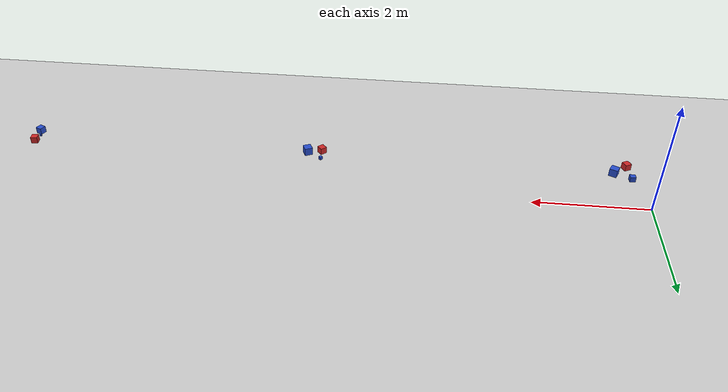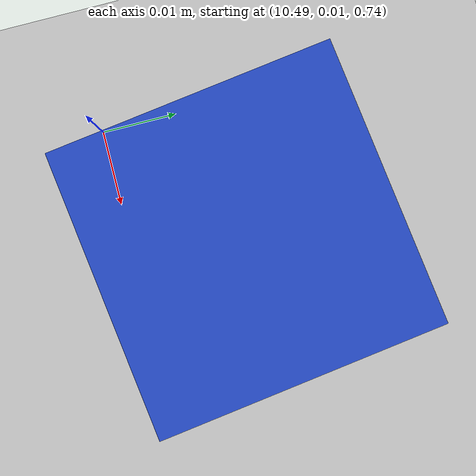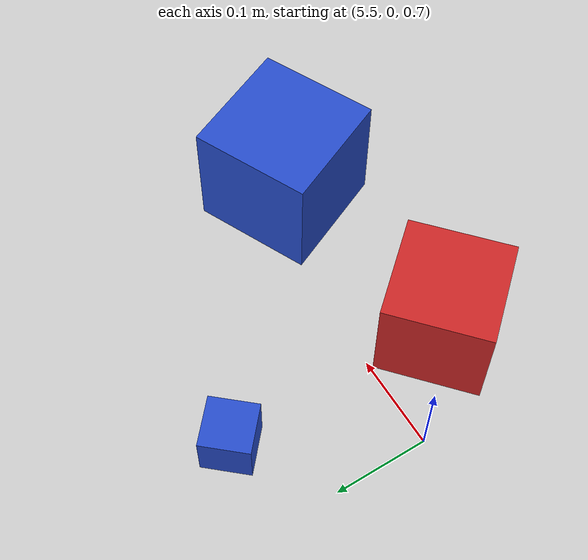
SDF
<sdf version="1.4">
 <world name="simple">
  <include><uri>model://ground_plane</uri></include>
  <include><uri>model://sun</uri></include>
  <include>
   <uri>model://blue_cube13cm</uri>
   <name>block2</name>
   <pose>0.775122606028 0.00917768376894 0.75 0 0 -0.462422397712</pose>
  </include>
  <include>
   <uri>model://red_cube11cm</uri>
   <name>block3</name>
   <pose>0.552118859762 -0.169786217913 0.75 0 0 -1.09881522158</pose>
  </include>
  <include>
   <uri>model://blue_cube9cm</uri>
   <name>block4</name>
   <pose>0.512461167611 0.171150570285 0.75 0 0 -1.51239862201</pose>
  </include>
  <include>
   <uri>model://blue_cube13cm</uri>
   <name>block32</name>
   <pose>5.82835834191 -0.0436869555082 0.75 0 0 2.00043534768</pose>
  </include>
  <include>
   <uri>model://red_cube11cm</uri>
   <name>block33</name>
   <pose>5.590232219462 -0.0823556166928 0.75 0 0 0.720586245288</pose>
  </include>
  <include>
   <uri>model://blue_cube5cm</uri>
   <name>block34</name>
   <pose>5.583656921256 0.166089543942 0.75 0 0 0.850874702647</pose>
  </include>
  <include>
   <uri>model://red_cube11cm</uri>
   <name>block41</name>
   <pose>10.560941877563 0.153616736138 0.75 0 0 -1.47891037588</pose>
  </include>
  <include>
   <uri>model://blue_cube3cm</uri>
   <name>block42</name>
   <pose>10.509553262591 0.0246769795919 0.75 0 0 -3.00862001452</pose>
  </include>
  <include>
   <uri>model://blue_cube11cm</uri>
   <name>block44</name>
   <pose>10.575518395117 -0.141505761186 0.75 0 0 1.14851744799</pose>
  </include>
 </world>
</sdf>

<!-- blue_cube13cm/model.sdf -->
<sdf version='1.4'>
  <model name="blue_cube13cm">
      <static>0</static>
      <link name='link'>
        <inertial>
          <mass>0.1</mass>
          <inertia>
            <ixx>0.001</ixx>
            <ixy>0.000000</ixy>
            <ixz>0.000000</ixz>
            <iyy>0.001</iyy>
            <iyz>0.000000</iyz>
            <izz>0.001</izz>
          </inertia>
        </inertial>
        <collision name='collision'>
          <geometry>
            <box>
              <size>0.130 0.130 0.130</size>
            </box>
          </geometry>
          <surface>
            <friction>
              <ode>
                <mu>15.0</mu>
                <mu2>15.0</mu2>
              </ode>
            </friction>
            <contact>
              <ode>
                <kp>1000000.0</kp>
                <kd>100.0</kd>
                <max_vel>1.0</max_vel>
                <min_depth>0.002</min_depth>
              </ode>
            </contact>
          </surface>
        </collision>
        <visual name='visual'>
          <geometry>
            <box>
              <size>0.130 0.130 0.130</size>
            </box>
          </geometry>
          <material>
            <script>
              <uri>file://media/materials/scripts/gazebo.material</uri>
              <name>Gazebo/Blue</name>
            </script>
          </material>
        </visual>
        <velocity_decay>
          <linear>0.000000</linear>
          <angular>0.000000</angular>
        </velocity_decay>
        <self_collide>0</self_collide>
        <kinematic>0</kinematic>
        <gravity>1</gravity>
      </link>
  </model>
</sdf>

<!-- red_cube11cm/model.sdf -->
<sdf version='1.4'>
  <model name="red_cube11cm">
      <static>0</static>
      <link name='link'>
        <inertial>
          <mass>0.1</mass>
          <inertia>
            <ixx>0.001</ixx>
            <ixy>0.000000</ixy>
            <ixz>0.000000</ixz>
            <iyy>0.001</iyy>
            <iyz>0.000000</iyz>
            <izz>0.001</izz>
          </inertia>
        </inertial>
        <collision name='collision'>
          <geometry>
            <box>
              <size>0.110 0.110 0.110</size>
            </box>
          </geometry>
          <surface>
            <friction>
              <ode>
                <mu>15.0</mu>
                <mu2>15.0</mu2>
              </ode>
            </friction>
            <contact>
              <ode>
                <kp>1000000.0</kp>
                <kd>100.0</kd>
                <max_vel>1.0</max_vel>
                <min_depth>0.002</min_depth>
              </ode>
            </contact>
          </surface>
        </collision>
        <visual name='visual'>
          <geometry>
            <box>
              <size>0.110 0.110 0.110</size>
            </box>
          </geometry>
          <material>
            <script>
              <uri>file://media/materials/scripts/gazebo.material</uri>
              <name>Gazebo/Red</name>
            </script>
          </material>
        </visual>
        <velocity_decay>
          <linear>0.000000</linear>
          <angular>0.000000</angular>
        </velocity_decay>
        <self_collide>0</self_collide>
        <kinematic>0</kinematic>
        <gravity>1</gravity>
      </link>
  </model>
</sdf>

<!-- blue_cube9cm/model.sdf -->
<sdf version='1.4'>
  <model name="blue_cube9cm">
      <static>0</static>
      <link name='link'>
        <inertial>
          <mass>0.1</mass>
          <inertia>
            <ixx>0.001</ixx>
            <ixy>0.000000</ixy>
            <ixz>0.000000</ixz>
            <iyy>0.001</iyy>
            <iyz>0.000000</iyz>
            <izz>0.001</izz>
          </inertia>
        </inertial>
        <collision name='collision'>
          <geometry>
            <box>
              <size>0.090 0.090 0.090</size>
            </box>
          </geometry>
          <surface>
            <friction>
              <ode>
                <mu>15.0</mu>
                <mu2>15.0</mu2>
              </ode>
            </friction>
            <contact>
              <ode>
                <kp>1000000.0</kp>
                <kd>100.0</kd>
                <max_vel>1.0</max_vel>
                <min_depth>0.002</min_depth>
              </ode>
            </contact>
          </surface>
        </collision>
        <visual name='visual'>
          <geometry>
            <box>
              <size>0.090 0.090 0.090</size>
            </box>
          </geometry>
          <material>
            <script>
              <uri>file://media/materials/scripts/gazebo.material</uri>
              <name>Gazebo/Blue</name>
            </script>
          </material>
        </visual>
        <velocity_decay>
          <linear>0.000000</linear>
          <angular>0.000000</angular>
        </velocity_decay>
        <self_collide>0</self_collide>
        <kinematic>0</kinematic>
        <gravity>1</gravity>
      </link>
  </model>
</sdf>

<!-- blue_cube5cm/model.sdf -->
<sdf version='1.4'>
  <model name="blue_cube5cm">
      <static>0</static>
      <link name='link'>
        <inertial>
          <mass>0.1</mass>
          <inertia>
            <ixx>0.001</ixx>
            <ixy>0.000000</ixy>
            <ixz>0.000000</ixz>
            <iyy>0.001</iyy>
            <iyz>0.000000</iyz>
            <izz>0.001</izz>
          </inertia>
        </inertial>
        <collision name='collision'>
          <geometry>
            <box>
              <size>0.050 0.050 0.050</size>
            </box>
          </geometry>
          <surface>
            <friction>
              <ode>
                <mu>15.0</mu>
                <mu2>15.0</mu2>
              </ode>
            </friction>
            <contact>
              <ode>
                <kp>1000000.0</kp>
                <kd>100.0</kd>
                <max_vel>1.0</max_vel>
                <min_depth>0.002</min_depth>
              </ode>
            </contact>
          </surface>
        </collision>
        <visual name='visual'>
          <geometry>
            <box>
              <size>0.050 0.050 0.050</size>
            </box>
          </geometry>
          <material>
            <script>
              <uri>file://media/materials/scripts/gazebo.material</uri>
              <name>Gazebo/Blue</name>
            </script>
          </material>
        </visual>
        <velocity_decay>
          <linear>0.000000</linear>
          <angular>0.000000</angular>
        </velocity_decay>
        <self_collide>0</self_collide>
        <kinematic>0</kinematic>
        <gravity>1</gravity>
      </link>
  </model>
</sdf>

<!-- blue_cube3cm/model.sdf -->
<sdf version='1.4'>
  <model name="blue_cube3cm">
      <static>0</static>
      <link name='link'>
        <inertial>
          <mass>0.1</mass>
          <inertia>
            <ixx>0.001</ixx>
            <ixy>0.000000</ixy>
            <ixz>0.000000</ixz>
            <iyy>0.001</iyy>
            <iyz>0.000000</iyz>
            <izz>0.001</izz>
          </inertia>
        </inertial>
        <collision name='collision'>
          <geometry>
            <box>
              <size>0.030 0.030 0.030</size>
            </box>
          </geometry>
          <surface>
            <friction>
              <ode>
                <mu>15.0</mu>
                <mu2>15.0</mu2>
              </ode>
            </friction>
            <contact>
              <ode>
                <kp>1000000.0</kp>
                <kd>100.0</kd>
                <max_vel>1.0</max_vel>
                <min_depth>0.002</min_depth>
              </ode>
            </contact>
          </surface>
        </collision>
        <visual name='visual'>
          <geometry>
            <box>
              <size>0.030 0.030 0.030</size>
            </box>
          </geometry>
          <material>
            <script>
              <uri>file://media/materials/scripts/gazebo.material</uri>
              <name>Gazebo/Blue</name>
            </script>
          </material>
        </visual>
        <velocity_decay>
          <linear>0.000000</linear>
          <angular>0.000000</angular>
        </velocity_decay>
        <self_collide>0</self_collide>
        <kinematic>0</kinematic>
        <gravity>1</gravity>
      </link>
  </model>
</sdf>

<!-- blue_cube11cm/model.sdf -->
<sdf version='1.4'>
  <model name="blue_cube11cm_11cm">
      <static>0</static>
      <link name='link'>
        <inertial>
          <mass>0.1</mass>
          <inertia>
            <ixx>0.001</ixx>
            <ixy>0.000000</ixy>
            <ixz>0.000000</ixz>
            <iyy>0.001</iyy>
            <iyz>0.000000</iyz>
            <izz>0.001</izz>
          </inertia>
        </inertial>
        <collision name='collision'>
          <geometry>
            <box>
              <size>0.110 0.110 0.110</size>
            </box>
          </geometry>
          <surface>
            <friction>
              <ode>
                <mu>15.0</mu>
                <mu2>15.0</mu2>
              </ode>
            </friction>
            <contact>
              <ode>
                <kp>1000000.0</kp>
                <kd>100.0</kd>
                <max_vel>1.0</max_vel>
                <min_depth>0.002</min_depth>
              </ode>
            </contact>
          </surface>
        </collision>
        <visual name='visual'>
          <geometry>
            <box>
              <size>0.110 0.110 0.110</size>
            </box>
          </geometry>
          <material>
            <script>
              <uri>file://media/materials/scripts/gazebo.material</uri>
              <name>Gazebo/Blue</name>
            </script>
          </material>
        </visual>
        <velocity_decay>
          <linear>0.000000</linear>
          <angular>0.000000</angular>
        </velocity_decay>
        <self_collide>0</self_collide>
        <kinematic>0</kinematic>
        <gravity>1</gravity>
      </link>
  </model>
</sdf>
